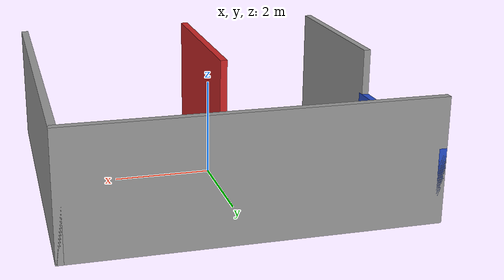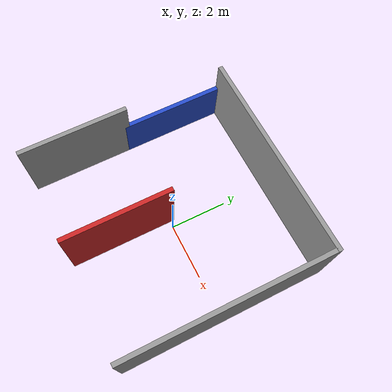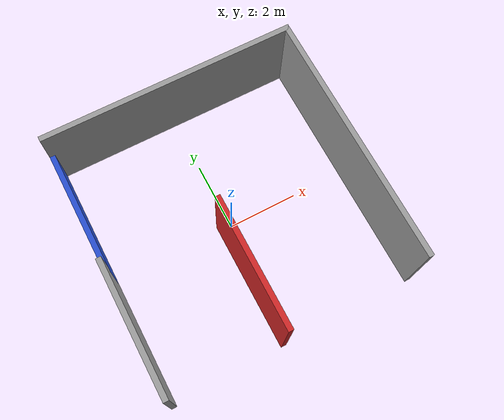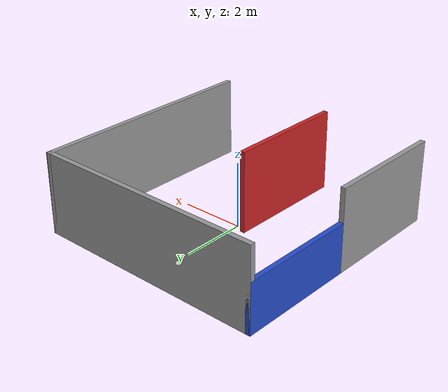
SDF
<?xml version='1.0'?>
<sdf version='1.7'>
  <model name='u-wall'>
    <link name='Wall_1'>
      <pose>-3.55 -1.8 0 0 -0 1.5708</pose>
      <self_collide>0</self_collide>
      <enable_wind>0</enable_wind>
      <kinematic>0</kinematic>
      <visual name='Wall_1_Visual'>
        <pose>0 0 1.25 0 -0 0</pose>
        <geometry>
          <box>
            <size>3.75 0.15 2.5</size>
          </box>
        </geometry>
        <material>
          <script>
            <uri>file://media/materials/scripts/gazebo.material</uri>
            <name>Gazebo/Grey</name>
          </script>
          <ambient>1 1 1 1</ambient>
          <shader type='pixel'/>
        </material>
        <meta>
          <layer>0</layer>
        </meta>
        <transparency>0</transparency>
        <cast_shadows>1</cast_shadows>
      </visual>
      <collision name='Wall_1_Collision'>
        <laser_retro>0</laser_retro>
        <max_contacts>10</max_contacts>
        <pose>0 0 1.25 0 -0 0</pose>
        <geometry>
          <box>
            <size>3.75 0.15 2.5</size>
          </box>
        </geometry>
        <surface>
          <friction>
            <ode>
              <mu>1</mu>
              <mu2>1</mu2>
              <fdir1>0 0 0</fdir1>
              <slip1>0</slip1>
              <slip2>0</slip2>
            </ode>
            <torsional>
              <coefficient>1</coefficient>
              <patch_radius>0</patch_radius>
              <surface_radius>0</surface_radius>
              <use_patch_radius>1</use_patch_radius>
              <ode>
                <slip>0</slip>
              </ode>
            </torsional>
          </friction>
          <bounce>
            <restitution_coefficient>0</restitution_coefficient>
            <threshold>1e+06</threshold>
          </bounce>
          <contact>
            <collide_without_contact>0</collide_without_contact>
            <collide_without_contact_bitmask>1</collide_without_contact_bitmask>
            <collide_bitmask>1</collide_bitmask>
            <ode>
              <soft_cfm>0</soft_cfm>
              <soft_erp>0.2</soft_erp>
              <kp>1e+13</kp>
              <kd>1</kd>
              <max_vel>0.01</max_vel>
              <min_depth>0</min_depth>
            </ode>
            <bullet>
              <split_impulse>1</split_impulse>
              <split_impulse_penetration_threshold>-0.01</split_impulse_penetration_threshold>
              <soft_cfm>0</soft_cfm>
              <soft_erp>0.2</soft_erp>
              <kp>1e+13</kp>
              <kd>1</kd>
            </bullet>
          </contact>
        </surface>
      </collision>
    </link>
    <link name='Wall_10'>
      <pose>0 3.6 0 0 -0 0</pose>
      <self_collide>0</self_collide>
      <enable_wind>0</enable_wind>
      <kinematic>0</kinematic>
      <visual name='Wall_10_Visual'>
        <pose>0 0 1.25 0 -0 0</pose>
        <geometry>
          <box>
            <size>7.25 0.15 2.5</size>
          </box>
        </geometry>
        <material>
          <script>
            <uri>file://media/materials/scripts/gazebo.material</uri>
            <name>Gazebo/Grey</name>
          </script>
          <ambient>1 1 1 1</ambient>
          <shader type='pixel'/>
        </material>
        <meta>
          <layer>0</layer>
        </meta>
        <transparency>0</transparency>
        <cast_shadows>1</cast_shadows>
      </visual>
      <collision name='Wall_10_Collision'>
        <laser_retro>0</laser_retro>
        <max_contacts>10</max_contacts>
        <pose>0 0 1.25 0 -0 0</pose>
        <geometry>
          <box>
            <size>7.25 0.15 2.5</size>
          </box>
        </geometry>
        <surface>
          <friction>
            <ode>
              <mu>1</mu>
              <mu2>1</mu2>
              <fdir1>0 0 0</fdir1>
              <slip1>0</slip1>
              <slip2>0</slip2>
            </ode>
            <torsional>
              <coefficient>1</coefficient>
              <patch_radius>0</patch_radius>
              <surface_radius>0</surface_radius>
              <use_patch_radius>1</use_patch_radius>
              <ode>
                <slip>0</slip>
              </ode>
            </torsional>
          </friction>
          <bounce>
            <restitution_coefficient>0</restitution_coefficient>
            <threshold>1e+06</threshold>
          </bounce>
          <contact>
            <collide_without_contact>0</collide_without_contact>
            <collide_without_contact_bitmask>1</collide_without_contact_bitmask>
            <collide_bitmask>1</collide_bitmask>
            <ode>
              <soft_cfm>0</soft_cfm>
              <soft_erp>0.2</soft_erp>
              <kp>1e+13</kp>
              <kd>1</kd>
              <max_vel>0.01</max_vel>
              <min_depth>0</min_depth>
            </ode>
            <bullet>
              <split_impulse>1</split_impulse>
              <split_impulse_penetration_threshold>-0.01</split_impulse_penetration_threshold>
              <soft_cfm>0</soft_cfm>
              <soft_erp>0.2</soft_erp>
              <kp>1e+13</kp>
              <kd>1</kd>
            </bullet>
          </contact>
        </surface>
      </collision>
    </link>
    <link name='Wall_12'>
      <pose>3.55 0.05 0 0 0 -1.5708</pose>
      <self_collide>0</self_collide>
      <enable_wind>0</enable_wind>
      <kinematic>0</kinematic>
      <visual name='Wall_12_Visual'>
        <pose>0 0 1.25 0 -0 0</pose>
        <geometry>
          <box>
            <size>7.25 0.15 2.5</size>
          </box>
        </geometry>
        <material>
          <script>
            <uri>file://media/materials/scripts/gazebo.material</uri>
            <name>Gazebo/Grey</name>
          </script>
          <ambient>1 1 1 1</ambient>
          <shader type='pixel'/>
        </material>
        <meta>
          <layer>0</layer>
        </meta>
        <transparency>0</transparency>
        <cast_shadows>1</cast_shadows>
      </visual>
      <collision name='Wall_12_Collision'>
        <laser_retro>0</laser_retro>
        <max_contacts>10</max_contacts>
        <pose>0 0 1.25 0 -0 0</pose>
        <geometry>
          <box>
            <size>7.25 0.15 2.5</size>
          </box>
        </geometry>
        <surface>
          <friction>
            <ode>
              <mu>1</mu>
              <mu2>1</mu2>
              <fdir1>0 0 0</fdir1>
              <slip1>0</slip1>
              <slip2>0</slip2>
            </ode>
            <torsional>
              <coefficient>1</coefficient>
              <patch_radius>0</patch_radius>
              <surface_radius>0</surface_radius>
              <use_patch_radius>1</use_patch_radius>
              <ode>
                <slip>0</slip>
              </ode>
            </torsional>
          </friction>
          <bounce>
            <restitution_coefficient>0</restitution_coefficient>
            <threshold>1e+06</threshold>
          </bounce>
          <contact>
            <collide_without_contact>0</collide_without_contact>
            <collide_without_contact_bitmask>1</collide_without_contact_bitmask>
            <collide_bitmask>1</collide_bitmask>
            <ode>
              <soft_cfm>0</soft_cfm>
              <soft_erp>0.2</soft_erp>
              <kp>1e+13</kp>
              <kd>1</kd>
              <max_vel>0.01</max_vel>
              <min_depth>0</min_depth>
            </ode>
            <bullet>
              <split_impulse>1</split_impulse>
              <split_impulse_penetration_threshold>-0.01</split_impulse_penetration_threshold>
              <soft_cfm>0</soft_cfm>
              <soft_erp>0.2</soft_erp>
              <kp>1e+13</kp>
              <kd>1</kd>
            </bullet>
          </contact>
        </surface>
      </collision>
    </link>
    <link name='Wall_5'>
      <pose>-0.3 -1.71 0 0 -0 1.5708</pose>
      <self_collide>0</self_collide>
      <enable_wind>0</enable_wind>
      <kinematic>0</kinematic>
      <gravity>1</gravity>
      <inertial>
        <mass>1</mass>
        <pose>0 0 0 0 -0 0</pose>
        <inertia>
          <ixx>1</ixx>
          <ixy>0</ixy>
          <ixz>0</ixz>
          <iyy>1</iyy>
          <iyz>0</iyz>
          <izz>1</izz>
        </inertia>
      </inertial>
      <visual name='Wall_5_Visual'>
        <pose>0 0 1.25 0 -0 0</pose>
        <geometry>
          <box>
            <size>3.75 0.15 2.5</size>
          </box>
        </geometry>
        <material>
          <script>
            <uri>file://media/materials/scripts/gazebo.material</uri>
            <name>Gazebo/Red</name>
          </script>
          <ambient>1 1 1 1</ambient>
          <shader type='pixel'>
            <normal_map>__default__</normal_map>
          </shader>
          <diffuse>1 0 0 1</diffuse>
          <specular>0.1 0.1 0.1 1</specular>
          <emissive>0 0 0 1</emissive>
        </material>
        <meta>
          <layer>0</layer>
        </meta>
        <transparency>0</transparency>
        <cast_shadows>1</cast_shadows>
      </visual>
      <collision name='Wall_5_Collision'>
        <laser_retro>0</laser_retro>
        <max_contacts>10</max_contacts>
        <pose>0 0 1.25 0 -0 0</pose>
        <geometry>
          <box>
            <size>3.75 0.15 2.5</size>
          </box>
        </geometry>
        <surface>
          <friction>
            <ode>
              <mu>1</mu>
              <mu2>1</mu2>
              <fdir1>0 0 0</fdir1>
              <slip1>0</slip1>
              <slip2>0</slip2>
            </ode>
            <torsional>
              <coefficient>1</coefficient>
              <patch_radius>0</patch_radius>
              <surface_radius>0</surface_radius>
              <use_patch_radius>1</use_patch_radius>
              <ode>
                <slip>0</slip>
              </ode>
            </torsional>
          </friction>
          <bounce>
            <restitution_coefficient>0</restitution_coefficient>
            <threshold>1e+06</threshold>
          </bounce>
          <contact>
            <collide_without_contact>0</collide_without_contact>
            <collide_without_contact_bitmask>1</collide_without_contact_bitmask>
            <collide_bitmask>1</collide_bitmask>
            <ode>
              <soft_cfm>0</soft_cfm>
              <soft_erp>0.2</soft_erp>
              <kp>1e+13</kp>
              <kd>1</kd>
              <max_vel>0.01</max_vel>
              <min_depth>0</min_depth>
            </ode>
            <bullet>
              <split_impulse>1</split_impulse>
              <split_impulse_penetration_threshold>-0.01</split_impulse_penetration_threshold>
              <soft_cfm>0</soft_cfm>
              <soft_erp>0.2</soft_erp>
              <kp>1e+13</kp>
              <kd>1</kd>
            </bullet>
          </contact>
        </surface>
      </collision>
    </link>
    <link name='Wall_9'>
      <pose>-3.55 1.8 0 0 -0 1.5708</pose>
      <self_collide>0</self_collide>
      <enable_wind>0</enable_wind>
      <kinematic>0</kinematic>
      <gravity>1</gravity>
      <inertial>
        <mass>1</mass>
        <pose>0 0 0 0 -0 0</pose>
        <inertia>
          <ixx>1</ixx>
          <ixy>0</ixy>
          <ixz>0</ixz>
          <iyy>1</iyy>
          <iyz>0</iyz>
          <izz>1</izz>
        </inertia>
      </inertial>
      <visual name='Wall_9_Visual'>
        <pose>0 0 0.75 0 -0 0</pose>
        <geometry>
          <box>
            <size>3.75 0.15 1.5</size>
          </box>
        </geometry>
        <material>
          <script>
            <uri>file://media/materials/scripts/gazebo.material</uri>
            <name>Gazebo/Blue</name>
          </script>
          <ambient>1 1 1 1</ambient>
          <shader type='pixel'>
            <normal_map>__default__</normal_map>
          </shader>
          <diffuse>0 0 1 1</diffuse>
          <specular>0.1 0.1 0.1 1</specular>
          <emissive>0 0 0 1</emissive>
        </material>
        <meta>
          <layer>0</layer>
        </meta>
        <transparency>0</transparency>
        <cast_shadows>1</cast_shadows>
      </visual>
      <collision name='Wall_9_Collision'>
        <laser_retro>0</laser_retro>
        <max_contacts>10</max_contacts>
        <pose>0 0 0.75 0 -0 0</pose>
        <geometry>
          <box>
            <size>3.75 0.15 1.5</size>
          </box>
        </geometry>
        <surface>
          <friction>
            <ode>
              <mu>1</mu>
              <mu2>1</mu2>
              <fdir1>0 0 0</fdir1>
              <slip1>0</slip1>
              <slip2>0</slip2>
            </ode>
            <torsional>
              <coefficient>1</coefficient>
              <patch_radius>0</patch_radius>
              <surface_radius>0</surface_radius>
              <use_patch_radius>1</use_patch_radius>
              <ode>
                <slip>0</slip>
              </ode>
            </torsional>
          </friction>
          <bounce>
            <restitution_coefficient>0</restitution_coefficient>
            <threshold>1e+06</threshold>
          </bounce>
          <contact>
            <collide_without_contact>0</collide_without_contact>
            <collide_without_contact_bitmask>1</collide_without_contact_bitmask>
            <collide_bitmask>1</collide_bitmask>
            <ode>
              <soft_cfm>0</soft_cfm>
              <soft_erp>0.2</soft_erp>
              <kp>1e+13</kp>
              <kd>1</kd>
              <max_vel>0.01</max_vel>
              <min_depth>0</min_depth>
            </ode>
            <bullet>
              <split_impulse>1</split_impulse>
              <split_impulse_penetration_threshold>-0.01</split_impulse_penetration_threshold>
              <soft_cfm>0</soft_cfm>
              <soft_erp>0.2</soft_erp>
              <kp>1e+13</kp>
              <kd>1</kd>
            </bullet>
          </contact>
        </surface>
      </collision>
    </link>
    <static>1</static>
    <allow_auto_disable>1</allow_auto_disable>
  </model>
</sdf>
